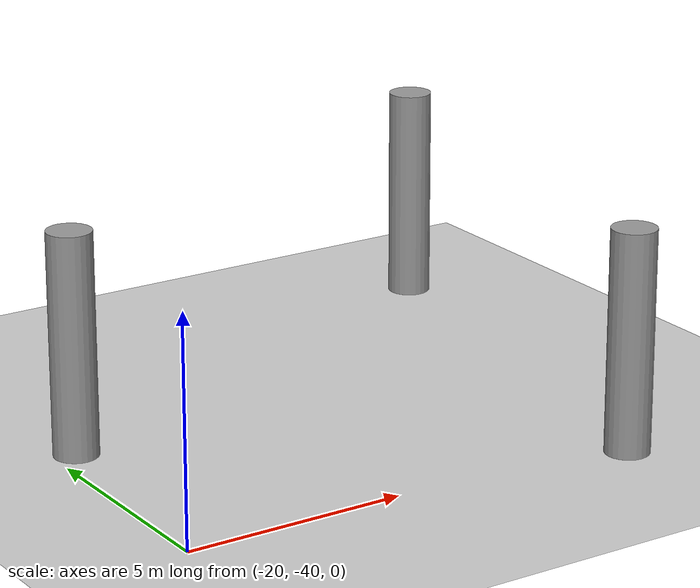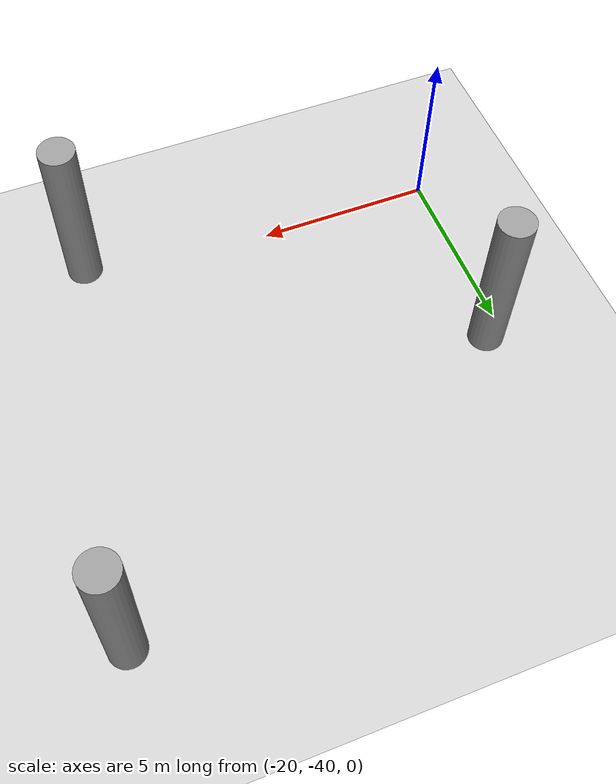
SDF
<sdf version="1.7">
 <world name="default">
  <model name="ground_plane">
   <static>1</static>
   <link name="link">
    <collision name="collision">
     <geometry><plane><normal>0 0 1</normal><size>100 100</size></plane></geometry>
     <surface><friction><ode><mu>100</mu><mu2>50</mu2></ode></friction></surface>
    </collision>
    <visual name="visual">
     <cast_shadows>0</cast_shadows>
     <geometry><plane><normal>0 0 1</normal><size>100 100</size></plane></geometry>
     <material>
      <script><uri>file://media/materials/scripts/gazebo.material</uri><name>Gazebo/Grey</name></script>
     </material>
    </visual>
   </link>
  </model>
  <model name="cylinder5_clone_21">
   <link name="link">
    <inertial>
     <mass>1</mass>
     <inertia><ixx>0.145833</ixx><ixy>0</ixy><ixz>0</ixz><iyy>0.145833</iyy><iyz>0</iyz><izz>0.125</izz></inertia>
    </inertial>
    <visual name="visual">
     <geometry><cylinder><radius>0.5</radius><length>5</length></cylinder></geometry>
     <material>
      <script><name>Gazebo/Grey</name><uri>file://media/materials/scripts/gazebo.material</uri></script>
      <shader type="pixel"><normal_map>__default__</normal_map></shader>
      <ambient>0.3 0.3 0.3 1</ambient>
      <diffuse>0.7 0.7 0.7 1</diffuse>
      <specular>0.01 0.01 0.01 1</specular>
      <emissive>0 0 0 1</emissive>
     </material>
    </visual>
    <collision name="collision">
     <geometry><cylinder><radius>0.5</radius><length>5</length></cylinder></geometry>
     <surface>
      <friction>
       <ode><mu>1</mu><mu2>1</mu2><fdir1>0 0 0</fdir1><slip1>0</slip1><slip2>0</slip2></ode>
       <torsional>
        <coefficient>1</coefficient>
        <patch_radius>0</patch_radius>
        <surface_radius>0</surface_radius>
        <use_patch_radius>1</use_patch_radius>
        <ode><slip>0</slip></ode>
       </torsional>
      </friction>
      <bounce><restitution_coefficient>0</restitution_coefficient><threshold>1e+06</threshold></bounce>
      <contact>
       <collide_without_contact>0</collide_without_contact>
       <collide_without_contact_bitmask>1</collide_without_contact_bitmask>
       <collide_bitmask>1</collide_bitmask>
       <ode>
        <soft_cfm>0</soft_cfm>
        <soft_erp>0.2</soft_erp>
        <kp>1e+13</kp>
        <kd>1</kd>
        <max_vel>0.01</max_vel>
        <min_depth>0</min_depth>
       </ode>
       <bullet>
        <split_impulse>1</split_impulse>
        <split_impulse_penetration_threshold>-0.01</split_impulse_penetration_threshold>
        <soft_cfm>0</soft_cfm>
        <soft_erp>0.2</soft_erp>
        <kp>1e+13</kp>
        <kd>1</kd>
       </bullet>
      </contact>
     </surface>
    </collision>
   </link>
   <static>0</static>
   <pose>-19.4774 -34.4434 2.5 0 -0 0</pose>
  </model>
  <model name="cylinder5_clone_27">
   <link name="link">
    <inertial>
     <mass>1</mass>
     <inertia><ixx>0.145833</ixx><ixy>0</ixy><ixz>0</ixz><iyy>0.145833</iyy><iyz>0</iyz><izz>0.125</izz></inertia>
    </inertial>
    <visual name="visual">
     <geometry><cylinder><radius>0.5</radius><length>5</length></cylinder></geometry>
     <material>
      <script><name>Gazebo/Grey</name><uri>file://media/materials/scripts/gazebo.material</uri></script>
      <shader type="pixel"><normal_map>__default__</normal_map></shader>
      <ambient>0.3 0.3 0.3 1</ambient>
      <diffuse>0.7 0.7 0.7 1</diffuse>
      <specular>0.01 0.01 0.01 1</specular>
      <emissive>0 0 0 1</emissive>
     </material>
    </visual>
    <collision name="collision">
     <geometry><cylinder><radius>0.5</radius><length>5</length></cylinder></geometry>
     <surface>
      <friction>
       <ode><mu>1</mu><mu2>1</mu2><fdir1>0 0 0</fdir1><slip1>0</slip1><slip2>0</slip2></ode>
       <torsional>
        <coefficient>1</coefficient>
        <patch_radius>0</patch_radius>
        <surface_radius>0</surface_radius>
        <use_patch_radius>1</use_patch_radius>
        <ode><slip>0</slip></ode>
       </torsional>
      </friction>
      <bounce><restitution_coefficient>0</restitution_coefficient><threshold>1e+06</threshold></bounce>
      <contact>
       <collide_without_contact>0</collide_without_contact>
       <collide_without_contact_bitmask>1</collide_without_contact_bitmask>
       <collide_bitmask>1</collide_bitmask>
       <ode>
        <soft_cfm>0</soft_cfm>
        <soft_erp>0.2</soft_erp>
        <kp>1e+13</kp>
        <kd>1</kd>
        <max_vel>0.01</max_vel>
        <min_depth>0</min_depth>
       </ode>
       <bullet>
        <split_impulse>1</split_impulse>
        <split_impulse_penetration_threshold>-0.01</split_impulse_penetration_threshold>
        <soft_cfm>0</soft_cfm>
        <soft_erp>0.2</soft_erp>
        <kp>1e+13</kp>
        <kd>1</kd>
       </bullet>
      </contact>
     </surface>
    </collision>
   </link>
   <static>0</static>
   <pose>-7.59075 -29.549 2.5 0 -0 0</pose>
  </model>
  <model name="cylinder5_clone_28">
   <link name="link">
    <inertial>
     <mass>1</mass>
     <inertia><ixx>0.145833</ixx><ixy>0</ixy><ixz>0</ixz><iyy>0.145833</iyy><iyz>0</iyz><izz>0.125</izz></inertia>
    </inertial>
    <visual name="visual">
     <geometry><cylinder><radius>0.5</radius><length>5</length></cylinder></geometry>
     <material>
      <script><name>Gazebo/Grey</name><uri>file://media/materials/scripts/gazebo.material</uri></script>
      <shader type="pixel"><normal_map>__default__</normal_map></shader>
      <ambient>0.3 0.3 0.3 1</ambient>
      <diffuse>0.7 0.7 0.7 1</diffuse>
      <specular>0.01 0.01 0.01 1</specular>
      <emissive>0 0 0 1</emissive>
     </material>
    </visual>
    <collision name="collision">
     <geometry><cylinder><radius>0.5</radius><length>5</length></cylinder></geometry>
     <surface>
      <friction>
       <ode><mu>1</mu><mu2>1</mu2><fdir1>0 0 0</fdir1><slip1>0</slip1><slip2>0</slip2></ode>
       <torsional>
        <coefficient>1</coefficient>
        <patch_radius>0</patch_radius>
        <surface_radius>0</surface_radius>
        <use_patch_radius>1</use_patch_radius>
        <ode><slip>0</slip></ode>
       </torsional>
      </friction>
      <bounce><restitution_coefficient>0</restitution_coefficient><threshold>1e+06</threshold></bounce>
      <contact>
       <collide_without_contact>0</collide_without_contact>
       <collide_without_contact_bitmask>1</collide_without_contact_bitmask>
       <collide_bitmask>1</collide_bitmask>
       <ode>
        <soft_cfm>0</soft_cfm>
        <soft_erp>0.2</soft_erp>
        <kp>1e+13</kp>
        <kd>1</kd>
        <max_vel>0.01</max_vel>
        <min_depth>0</min_depth>
       </ode>
       <bullet>
        <split_impulse>1</split_impulse>
        <split_impulse_penetration_threshold>-0.01</split_impulse_penetration_threshold>
        <soft_cfm>0</soft_cfm>
        <soft_erp>0.2</soft_erp>
        <kp>1e+13</kp>
        <kd>1</kd>
       </bullet>
      </contact>
     </surface>
    </collision>
   </link>
   <static>0</static>
   <pose>-9.6245 -40.7116 2.5 0 -0 0</pose>
  </model>
 </world>
</sdf>
